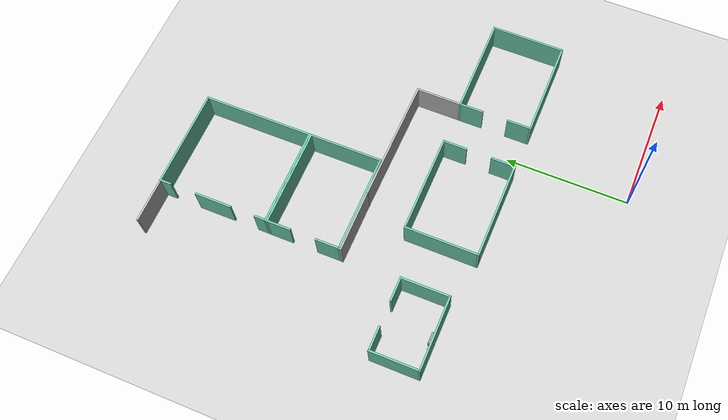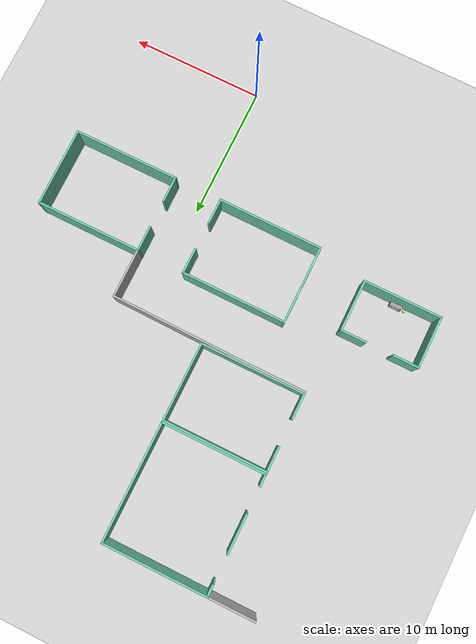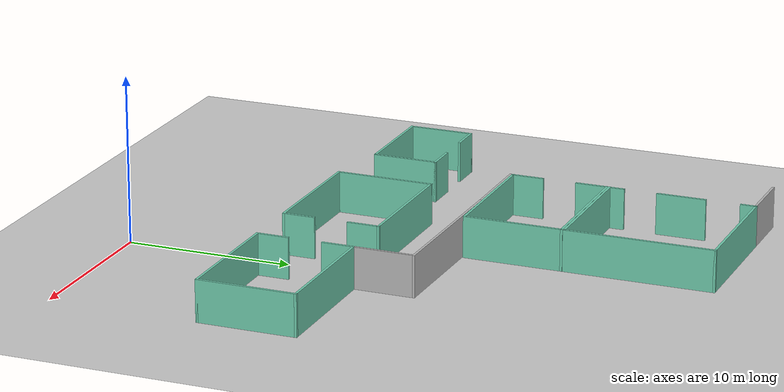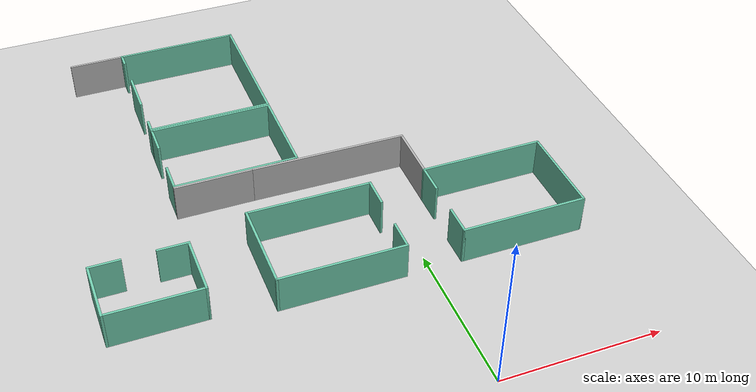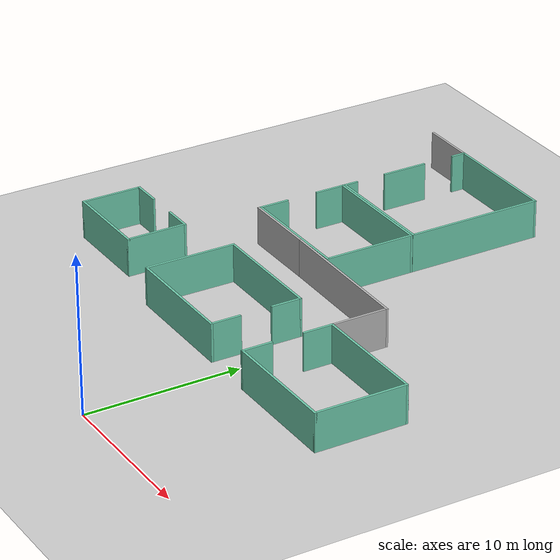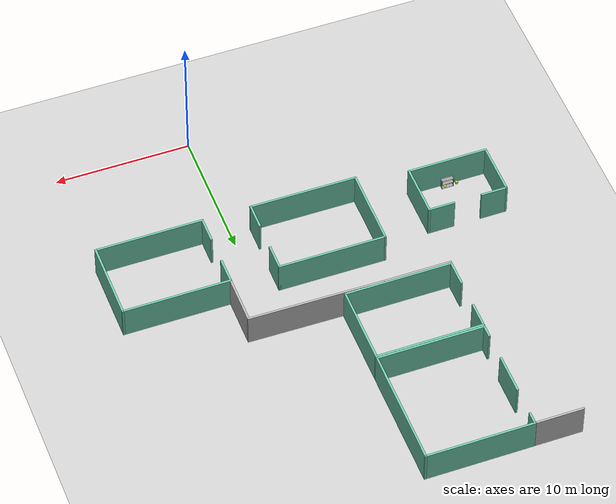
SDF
<sdf version="1.7">
 <world name="hospital_world">
  <model name="ground_plane">
   <static>1</static>
   <link name="link">
    <collision name="collision">
     <geometry><plane><normal>0 0 1</normal><size>100 100</size></plane></geometry>
     <surface>
      <contact><collide_bitmask>65535</collide_bitmask></contact>
      <friction><ode><mu>100</mu><mu2>50</mu2></ode></friction>
     </surface>
    </collision>
    <visual name="visual">
     <cast_shadows>0</cast_shadows>
     <geometry><plane><normal>0 0 1</normal><size>100 100</size></plane></geometry>
     <material>
      <script><uri>file://media/materials/scripts/gazebo.material</uri><name>Gazebo/Grey</name></script>
     </material>
    </visual>
   </link>
  </model>
  <model name="model.sdf_1">
   <pose>5.99492 11.9339 0 0 -0 0</pose>
   <link name="Wall_0">
    <collision name="Wall_0_Collision">
     <geometry><box><size>8 0.15 2.5</size></box></geometry>
     <pose>0 0 1.25 0 -0 0</pose>
    </collision>
    <visual name="Wall_0_Visual">
     <pose>0 0 1.25 0 -0 0</pose>
     <geometry><box><size>8 0.15 2.5</size></box></geometry>
     <material>
      <script><uri>file://media/materials/scripts/gazebo.material</uri><name>Gazebo/Grey</name></script>
      <ambient>0.435294 0.796078 0.67451 1</ambient>
     </material>
     <meta><layer>0</layer></meta>
    </visual>
    <pose>-0 -2.925 0 0 -0 0</pose>
   </link>
   <link name="Wall_2">
    <collision name="Wall_2_Collision">
     <geometry><box><size>6 0.15 2.5</size></box></geometry>
     <pose>0 0 1.25 0 -0 0</pose>
    </collision>
    <visual name="Wall_2_Visual">
     <pose>0 0 1.25 0 -0 0</pose>
     <geometry><box><size>6 0.15 2.5</size></box></geometry>
     <material>
      <script><uri>file://media/materials/scripts/gazebo.material</uri><name>Gazebo/Grey</name></script>
      <ambient>0.435294 0.796078 0.67451 1</ambient>
     </material>
     <meta><layer>0</layer></meta>
    </visual>
    <pose>3.925 0 0 0 -0 1.5708</pose>
   </link>
   <link name="Wall_5">
    <collision name="Wall_5_Collision">
     <geometry><box><size>8 0.15 2.5</size></box></geometry>
     <pose>0 0 1.25 0 -0 0</pose>
    </collision>
    <visual name="Wall_5_Visual">
     <pose>0 0 1.25 0 -0 0</pose>
     <geometry><box><size>8 0.15 2.5</size></box></geometry>
     <material>
      <script><uri>file://media/materials/scripts/gazebo.material</uri><name>Gazebo/Grey</name></script>
      <ambient>0.435294 0.796078 0.67451 1</ambient>
     </material>
     <meta><layer>0</layer></meta>
    </visual>
    <pose>-0 2.925 0 0 -0 3.14159</pose>
   </link>
   <link name="Wall_6">
    <collision name="Wall_6_Collision">
     <geometry><box><size>2 0.15 2.5</size></box></geometry>
     <pose>0 0 1.25 0 -0 0</pose>
    </collision>
    <visual name="Wall_6_Visual">
     <pose>0 0 1.25 0 -0 0</pose>
     <geometry><box><size>2 0.15 2.5</size></box></geometry>
     <material>
      <script><uri>file://media/materials/scripts/gazebo.material</uri><name>Gazebo/Grey</name></script>
      <ambient>0.435294 0.796078 0.67451 1</ambient>
     </material>
     <meta><layer>0</layer></meta>
    </visual>
    <pose>-3.925 2 0 0 -0 -1.5708</pose>
   </link>
   <link name="Wall_8">
    <collision name="Wall_8_Collision">
     <geometry><box><size>2 0.15 2.5</size></box></geometry>
     <pose>0 0 1.25 0 -0 0</pose>
    </collision>
    <visual name="Wall_8_Visual">
     <pose>0 0 1.25 0 -0 0</pose>
     <geometry><box><size>2 0.15 2.5</size></box></geometry>
     <material>
      <script><uri>file://media/materials/scripts/gazebo.material</uri><name>Gazebo/Grey</name></script>
      <ambient>0.435294 0.796078 0.67451 1</ambient>
     </material>
     <meta><layer>0</layer></meta>
    </visual>
    <pose>-3.925 -2 0 0 -0 1.5708</pose>
   </link>
   <static>1</static>
  </model>
  <model name="model.sdf_2_clone_clone">
   <pose>-5.44042 11.9649 0 0 -0 3.13762</pose>
   <link name="Wall_0">
    <collision name="Wall_0_Collision">
     <geometry><box><size>8 0.15 2.5</size></box></geometry>
     <pose>0 0 1.25 0 -0 0</pose>
    </collision>
    <visual name="Wall_0_Visual">
     <pose>0 0 1.25 0 -0 0</pose>
     <geometry><box><size>8 0.15 2.5</size></box></geometry>
     <material>
      <script><uri>file://media/materials/scripts/gazebo.material</uri><name>Gazebo/Grey</name></script>
      <ambient>0.435294 0.796078 0.67451 1</ambient>
     </material>
     <meta><layer>0</layer></meta>
    </visual>
    <pose>-0 -2.925 0 0 -0 0</pose>
   </link>
   <link name="Wall_2">
    <collision name="Wall_2_Collision">
     <geometry><box><size>6 0.15 2.5</size></box></geometry>
     <pose>0 0 1.25 0 -0 0</pose>
    </collision>
    <visual name="Wall_2_Visual">
     <pose>0 0 1.25 0 -0 0</pose>
     <geometry><box><size>6 0.15 2.5</size></box></geometry>
     <material>
      <script><uri>file://media/materials/scripts/gazebo.material</uri><name>Gazebo/Grey</name></script>
      <ambient>0.435294 0.796078 0.67451 1</ambient>
     </material>
     <meta><layer>0</layer></meta>
    </visual>
    <pose>3.925 0 0 0 -0 1.5708</pose>
   </link>
   <link name="Wall_5">
    <collision name="Wall_5_Collision">
     <geometry><box><size>8 0.15 2.5</size></box></geometry>
     <pose>0 0 1.25 0 -0 0</pose>
    </collision>
    <visual name="Wall_5_Visual">
     <pose>0 0 1.25 0 -0 0</pose>
     <geometry><box><size>8 0.15 2.5</size></box></geometry>
     <material>
      <script><uri>file://media/materials/scripts/gazebo.material</uri><name>Gazebo/Grey</name></script>
      <ambient>0.435294 0.796078 0.67451 1</ambient>
     </material>
     <meta><layer>0</layer></meta>
    </visual>
    <pose>-0 2.925 0 0 -0 3.14159</pose>
   </link>
   <link name="Wall_6">
    <collision name="Wall_6_Collision">
     <geometry><box><size>2 0.15 2.5</size></box></geometry>
     <pose>0 0 1.25 0 -0 0</pose>
    </collision>
    <visual name="Wall_6_Visual">
     <pose>0 0 1.25 0 -0 0</pose>
     <geometry><box><size>2 0.15 2.5</size></box></geometry>
     <material>
      <script><uri>file://media/materials/scripts/gazebo.material</uri><name>Gazebo/Grey</name></script>
      <ambient>0.435294 0.796078 0.67451 1</ambient>
     </material>
     <meta><layer>0</layer></meta>
    </visual>
    <pose>-3.925 2 0 0 -0 -1.5708</pose>
   </link>
   <link name="Wall_8">
    <collision name="Wall_8_Collision">
     <geometry><box><size>2 0.15 2.5</size></box></geometry>
     <pose>0 0 1.25 0 -0 0</pose>
    </collision>
    <visual name="Wall_8_Visual">
     <pose>0 0 1.25 0 -0 0</pose>
     <geometry><box><size>2 0.15 2.5</size></box></geometry>
     <material>
      <script><uri>file://media/materials/scripts/gazebo.material</uri><name>Gazebo/Grey</name></script>
      <ambient>0.435294 0.796078 0.67451 1</ambient>
     </material>
     <meta><layer>0</layer></meta>
    </visual>
    <pose>-3.925 -2 0 0 -0 1.5708</pose>
   </link>
   <static>1</static>
  </model>
  <model name="wall_3_5_clone">
   <static>1</static>
   <link name="link">
    <pose>0 0 1.25 0 -0 0</pose>
    <collision name="collision">
     <geometry><box><size>3.5 0.15 2.5</size></box></geometry>
     <surface>
      <contact>
       <collide_without_contact>1</collide_without_contact>
       <collide_without_contact_bitmask>2</collide_without_contact_bitmask>
      </contact>
     </surface>
    </collision>
    <visual name="visual">
     <cast_shadows>0</cast_shadows>
     <geometry><box><size>3.5 0.15 2.5</size></box></geometry>
     <material>
      <script>
       <uri>model://cutout_wall/materials/scripts</uri>
       <uri>model://cutout_wall/materials/textures</uri>
       <name>drc_practice/cutout_wall</name>
      </script>
     </material>
    </visual>
    <sensor name="mud_contact" type="contact">
     <always_on>1</always_on>
     <update_rate>1000</update_rate>
     <contact><collision>collision</collision><topic>__default_topic__</topic></contact>
    </sensor>
   </link>
   <plugin name="gazebo_mud" filename="libMudPlugin.so">
    <contact_sensor_name>link/mud_contact</contact_sensor_name>
    <stiffness>0.0</stiffness>
    <damping>40.0</damping>
    <contact_surface_bitmask>2</contact_surface_bitmask>
    <link_name>drill::link</link_name>
   </plugin>
   <pose>2.08091 16.6634 -0 0 -0 1.56806</pose>
  </model>
  <model name="wall_10_clone">
   <static>1</static>
   <link name="link">
    <pose>0 0 1.25 0 -0 0</pose>
    <collision name="collision">
     <geometry><box><size>10 0.15 2.5</size></box></geometry>
     <surface>
      <contact>
       <collide_without_contact>1</collide_without_contact>
       <collide_without_contact_bitmask>2</collide_without_contact_bitmask>
      </contact>
     </surface>
    </collision>
    <visual name="visual">
     <cast_shadows>0</cast_shadows>
     <geometry><box><size>10 0.15 2.5</size></box></geometry>
     <material>
      <script>
       <uri>model://cutout_wall/materials/scripts</uri>
       <uri>model://cutout_wall/materials/textures</uri>
       <name>drc_practice/cutout_wall</name>
      </script>
     </material>
    </visual>
    <sensor name="mud_contact" type="contact">
     <always_on>1</always_on>
     <update_rate>1000</update_rate>
     <contact><collision>collision</collision><topic>__default_topic__</topic></contact>
    </sensor>
   </link>
   <plugin name="gazebo_mud" filename="libMudPlugin.so">
    <contact_sensor_name>link/mud_contact</contact_sensor_name>
    <stiffness>0.0</stiffness>
    <damping>40.0</damping>
    <contact_surface_bitmask>2</contact_surface_bitmask>
    <link_name>drill::link</link_name>
   </plugin>
   <pose>-2.83918 18.5508 -0 0 0 -0.014119</pose>
  </model>
  <model name="wall_5_clone">
   <static>1</static>
   <link name="link">
    <pose>0 0 1.25 0 -0 0</pose>
    <collision name="collision">
     <geometry><box><size>5 0.15 2.5</size></box></geometry>
     <surface>
      <contact>
       <collide_without_contact>1</collide_without_contact>
       <collide_without_contact_bitmask>2</collide_without_contact_bitmask>
      </contact>
     </surface>
    </collision>
    <visual name="visual">
     <cast_shadows>0</cast_shadows>
     <geometry><box><size>5 0.15 2.5</size></box></geometry>
     <material>
      <script>
       <uri>model://cutout_wall/materials/scripts</uri>
       <uri>model://cutout_wall/materials/textures</uri>
       <name>drc_practice/cutout_wall</name>
      </script>
     </material>
    </visual>
    <sensor name="mud_contact" type="contact">
     <always_on>1</always_on>
     <update_rate>1000</update_rate>
     <contact><collision>collision</collision><topic>__default_topic__</topic></contact>
    </sensor>
   </link>
   <plugin name="gazebo_mud" filename="libMudPlugin.so">
    <contact_sensor_name>link/mud_contact</contact_sensor_name>
    <stiffness>0.0</stiffness>
    <damping>40.0</damping>
    <contact_surface_bitmask>2</contact_surface_bitmask>
    <link_name>drill::link</link_name>
   </plugin>
   <pose>-10.3264 18.6222 0 0 -0 0</pose>
  </model>
  <model name="hospital_stroage_room">
   <pose>-16.0834 11.7449 0 0 -0 0</pose>
   <link name="Wall_0">
    <collision name="Wall_0_Collision">
     <geometry><box><size>6 0.15 2.5</size></box></geometry>
     <pose>0 0 1.25 0 -0 0</pose>
    </collision>
    <visual name="Wall_0_Visual">
     <pose>0 0 1.25 0 -0 0</pose>
     <geometry><box><size>6 0.15 2.5</size></box></geometry>
     <material>
      <script><uri>file://media/materials/scripts/gazebo.material</uri><name>Gazebo/Grey</name></script>
      <ambient>0.435294 0.796078 0.67451 1</ambient>
     </material>
     <meta><layer>0</layer></meta>
    </visual>
    <pose>-0 -1.925 0 0 -0 0</pose>
   </link>
   <link name="Wall_1">
    <collision name="Wall_1_Collision">
     <geometry><box><size>4 0.15 2.5</size></box></geometry>
     <pose>0 0 1.25 0 -0 0</pose>
    </collision>
    <visual name="Wall_1_Visual">
     <pose>0 0 1.25 0 -0 0</pose>
     <geometry><box><size>4 0.15 2.5</size></box></geometry>
     <material>
      <script><uri>file://media/materials/scripts/gazebo.material</uri><name>Gazebo/Grey</name></script>
      <ambient>0.435294 0.796078 0.67451 1</ambient>
     </material>
     <meta><layer>0</layer></meta>
    </visual>
    <pose>2.925 0 0 0 -0 1.5708</pose>
   </link>
   <link name="Wall_3">
    <collision name="Wall_3_Collision">
     <geometry><box><size>4 0.15 2.5</size></box></geometry>
     <pose>0 0 1.25 0 -0 0</pose>
    </collision>
    <visual name="Wall_3_Visual">
     <pose>0 0 1.25 0 -0 0</pose>
     <geometry><box><size>4 0.15 2.5</size></box></geometry>
     <material>
      <script><uri>file://media/materials/scripts/gazebo.material</uri><name>Gazebo/Grey</name></script>
      <ambient>0.435294 0.796078 0.67451 1</ambient>
     </material>
     <meta><layer>0</layer></meta>
    </visual>
    <pose>-2.925 0 0 0 -0 1.5708</pose>
   </link>
   <link name="Wall_4">
    <collision name="Wall_4_Collision">
     <geometry><box><size>2 0.15 2.5</size></box></geometry>
     <pose>0 0 1.25 0 -0 0</pose>
    </collision>
    <visual name="Wall_4_Visual">
     <pose>0 0 1.25 0 -0 0</pose>
     <geometry><box><size>2 0.15 2.5</size></box></geometry>
     <material>
      <script><uri>file://media/materials/scripts/gazebo.material</uri><name>Gazebo/Grey</name></script>
      <ambient>0.435294 0.796078 0.67451 1</ambient>
     </material>
     <meta><layer>0</layer></meta>
    </visual>
    <pose>-2 1.925 0 0 -0 0</pose>
   </link>
   <link name="Wall_6">
    <collision name="Wall_6_Collision">
     <geometry><box><size>2 0.15 2.5</size></box></geometry>
     <pose>0 0 1.25 0 -0 0</pose>
    </collision>
    <visual name="Wall_6_Visual">
     <pose>0 0 1.25 0 -0 0</pose>
     <geometry><box><size>2 0.15 2.5</size></box></geometry>
     <material>
      <script><uri>file://media/materials/scripts/gazebo.material</uri><name>Gazebo/Grey</name></script>
      <ambient>0.435294 0.796078 0.67451 1</ambient>
     </material>
     <meta><layer>0</layer></meta>
    </visual>
    <pose>2 1.925 0 0 -0 3.14159</pose>
   </link>
   <static>1</static>
  </model>
  <model name="model.sdf_clone">
   <pose>-8.82013 21.689 0 0 -0 0</pose>
   <link name="Wall_0">
    <collision name="Wall_0_Collision">
     <geometry><box><size>8 0.15 2.5</size></box></geometry>
     <pose>0 0 1.25 0 -0 0</pose>
    </collision>
    <visual name="Wall_0_Visual">
     <pose>0 0 1.25 0 -0 0</pose>
     <geometry><box><size>8 0.15 2.5</size></box></geometry>
     <material>
      <script><uri>file://media/materials/scripts/gazebo.material</uri><name>Gazebo/Grey</name></script>
      <ambient>0.435294 0.796078 0.67451 1</ambient>
     </material>
     <meta><layer>0</layer></meta>
    </visual>
    <pose>-0 -2.925 0 0 -0 0</pose>
   </link>
   <link name="Wall_2">
    <collision name="Wall_2_Collision">
     <geometry><box><size>6 0.15 2.5</size></box></geometry>
     <pose>0 0 1.25 0 -0 0</pose>
    </collision>
    <visual name="Wall_2_Visual">
     <pose>0 0 1.25 0 -0 0</pose>
     <geometry><box><size>6 0.15 2.5</size></box></geometry>
     <material>
      <script><uri>file://media/materials/scripts/gazebo.material</uri><name>Gazebo/Grey</name></script>
      <ambient>0.435294 0.796078 0.67451 1</ambient>
     </material>
     <meta><layer>0</layer></meta>
    </visual>
    <pose>3.925 0 0 0 -0 1.5708</pose>
   </link>
   <link name="Wall_5">
    <collision name="Wall_5_Collision">
     <geometry><box><size>8 0.15 2.5</size></box></geometry>
     <pose>0 0 1.25 0 -0 0</pose>
    </collision>
    <visual name="Wall_5_Visual">
     <pose>0 0 1.25 0 -0 0</pose>
     <geometry><box><size>8 0.15 2.5</size></box></geometry>
     <material>
      <script><uri>file://media/materials/scripts/gazebo.material</uri><name>Gazebo/Grey</name></script>
      <ambient>0.435294 0.796078 0.67451 1</ambient>
     </material>
     <meta><layer>0</layer></meta>
    </visual>
    <pose>-0 2.925 0 0 -0 3.14159</pose>
   </link>
   <link name="Wall_6">
    <collision name="Wall_6_Collision">
     <geometry><box><size>2 0.15 2.5</size></box></geometry>
     <pose>0 0 1.25 0 -0 0</pose>
    </collision>
    <visual name="Wall_6_Visual">
     <pose>0 0 1.25 0 -0 0</pose>
     <geometry><box><size>2 0.15 2.5</size></box></geometry>
     <material>
      <script><uri>file://media/materials/scripts/gazebo.material</uri><name>Gazebo/Grey</name></script>
      <ambient>0.435294 0.796078 0.67451 1</ambient>
     </material>
     <meta><layer>0</layer></meta>
    </visual>
    <pose>-3.925 2 0 0 -0 -1.5708</pose>
   </link>
   <link name="Wall_8">
    <collision name="Wall_8_Collision">
     <geometry><box><size>2 0.15 2.5</size></box></geometry>
     <pose>0 0 1.25 0 -0 0</pose>
    </collision>
    <visual name="Wall_8_Visual">
     <pose>0 0 1.25 0 -0 0</pose>
     <geometry><box><size>2 0.15 2.5</size></box></geometry>
     <material>
      <script><uri>file://media/materials/scripts/gazebo.material</uri><name>Gazebo/Grey</name></script>
      <ambient>0.435294 0.796078 0.67451 1</ambient>
     </material>
     <meta><layer>0</layer></meta>
    </visual>
    <pose>-3.925 -2 0 0 -0 1.5708</pose>
   </link>
   <static>1</static>
  </model>
  <model name="model.sdf_3">
   <pose>-8.81711 29.1965 0 0 -0 0</pose>
   <link name="Wall_0">
    <collision name="Wall_0_Collision">
     <geometry><box><size>8 0.15 2.5</size></box></geometry>
     <pose>0 0 1.25 0 -0 0</pose>
    </collision>
    <visual name="Wall_0_Visual">
     <pose>0 0 1.25 0 -0 0</pose>
     <geometry><box><size>8 0.15 2.5</size></box></geometry>
     <material>
      <script><uri>file://media/materials/scripts/gazebo.material</uri><name>Gazebo/Grey</name></script>
      <ambient>0.435294 0.796078 0.67451 1</ambient>
     </material>
     <meta><layer>0</layer></meta>
    </visual>
    <pose>0.00165 -4.425 0 0 -0 0</pose>
   </link>
   <link name="Wall_1">
    <collision name="Wall_1_Collision">
     <geometry><box><size>9 0.15 2.5</size></box></geometry>
     <pose>0 0 1.25 0 -0 0</pose>
    </collision>
    <visual name="Wall_1_Visual">
     <pose>0 0 1.25 0 -0 0</pose>
     <geometry><box><size>9 0.15 2.5</size></box></geometry>
     <material>
      <script><uri>file://media/materials/scripts/gazebo.material</uri><name>Gazebo/Grey</name></script>
      <ambient>0.435294 0.796078 0.67451 1</ambient>
     </material>
     <meta><layer>0</layer></meta>
    </visual>
    <pose>3.92665 0 0 0 -0 1.5708</pose>
   </link>
   <link name="Wall_3">
    <collision name="Wall_3_Collision">
     <geometry><box><size>8 0.15 2.5</size></box></geometry>
     <pose>0 0 1.25 0 -0 0</pose>
    </collision>
    <visual name="Wall_3_Visual">
     <pose>0 0 1.25 0 -0 0</pose>
     <geometry><box><size>8 0.15 2.5</size></box></geometry>
     <material>
      <script><uri>file://media/materials/scripts/gazebo.material</uri><name>Gazebo/Grey</name></script>
      <ambient>0.435294 0.796078 0.67451 1</ambient>
     </material>
     <meta><layer>0</layer></meta>
    </visual>
    <pose>0.00165 4.425 0 0 -0 3.14159</pose>
   </link>
   <link name="Wall_4">
    <collision name="Wall_4_Collision">
     <geometry><box><size>1 0.15 2.5</size></box></geometry>
     <pose>0 0 1.25 0 -0 0</pose>
    </collision>
    <visual name="Wall_4_Visual">
     <pose>0 0 1.25 0 -0 0</pose>
     <geometry><box><size>1 0.15 2.5</size></box></geometry>
     <material>
      <script><uri>file://media/materials/scripts/gazebo.material</uri><name>Gazebo/Grey</name></script>
      <ambient>0.435294 0.796078 0.67451 1</ambient>
     </material>
     <meta><layer>0</layer></meta>
    </visual>
    <pose>-3.92335 4 0 0 -0 -1.5708</pose>
   </link>
   <link name="Wall_6">
    <collision name="Wall_6_Collision">
     <geometry><box><size>1 0.15 2.5</size></box></geometry>
     <pose>0 0 1.25 0 -0 0</pose>
    </collision>
    <visual name="Wall_6_Visual">
     <pose>0 0 1.25 0 -0 0</pose>
     <geometry><box><size>1 0.15 2.5</size></box></geometry>
     <material>
      <script><uri>file://media/materials/scripts/gazebo.material</uri><name>Gazebo/Grey</name></script>
      <ambient>0.435294 0.796078 0.67451 1</ambient>
     </material>
     <meta><layer>0</layer></meta>
    </visual>
    <pose>-3.92335 -4 0 0 -0 1.5708</pose>
   </link>
   <link name="Wall_9">
    <collision name="Wall_9_Collision">
     <geometry><box><size>3 0.15 2.5</size></box></geometry>
     <pose>0 0 1.25 0 -0 0</pose>
    </collision>
    <visual name="Wall_9_Visual">
     <pose>0 0 1.25 0 -0 0</pose>
     <geometry><box><size>3 0.15 2.5</size></box></geometry>
     <material>
      <script><uri>file://media/materials/scripts/gazebo.material</uri><name>Gazebo/Grey</name></script>
      <ambient>0.435294 0.796078 0.67451 1</ambient>
     </material>
     <meta><layer>0</layer></meta>
    </visual>
    <pose>-3.92665 -0.04515 0 0 -0 1.5708</pose>
   </link>
   <static>1</static>
  </model>
  <model name="wall_3_5_0">
   <static>1</static>
   <link name="link">
    <pose>0 0 1.25 0 -0 0</pose>
    <collision name="collision">
     <geometry><box><size>3.5 0.15 2.5</size></box></geometry>
     <surface>
      <contact>
       <collide_without_contact>1</collide_without_contact>
       <collide_without_contact_bitmask>2</collide_without_contact_bitmask>
      </contact>
     </surface>
    </collision>
    <visual name="visual">
     <cast_shadows>0</cast_shadows>
     <geometry><box><size>3.5 0.15 2.5</size></box></geometry>
     <material>
      <script>
       <uri>model://cutout_wall/materials/scripts</uri>
       <uri>model://cutout_wall/materials/textures</uri>
       <name>drc_practice/cutout_wall</name>
      </script>
     </material>
    </visual>
    <sensor name="mud_contact" type="contact">
     <always_on>1</always_on>
     <update_rate>1000</update_rate>
     <contact><collision>collision</collision><topic>__default_topic__</topic></contact>
    </sensor>
   </link>
   <plugin name="gazebo_mud" filename="libMudPlugin.so">
    <contact_sensor_name>link/mud_contact</contact_sensor_name>
    <stiffness>0.0</stiffness>
    <damping>40.0</damping>
    <contact_surface_bitmask>2</contact_surface_bitmask>
    <link_name>drill::link</link_name>
   </plugin>
   <pose>-14.5756 33.6168 0 0 -0 0</pose>
  </model>
  <model name="Wall_Cabinet_36x15W_clone_clone">
   <link name="Wall_0">
    <pose>0 0 0.01 0 -0 0</pose>
    <inertial>
     <mass>1.9796</mass>
     <inertia><ixx>0.0145</ixx><iyy>0.1511</iyy><izz>0.1367</izz><ixy>0</ixy><ixz>0</ixz><iyz>0</iyz></inertia>
    </inertial>
    <collision name="Wall_0_Collision"><geometry><box><size>0.91 0.296 0.02</size></box></geometry></collision>
    <visual name="Wall_0_Visual">
     <geometry><box><size>0.91 0.296 0.02</size></box></geometry>
     <material>
      <script><uri>file://media/materials/scripts/gazebo.material</uri><name>Gazebo/Grey</name></script>
      <ambient>1 1 1 1</ambient>
     </material>
    </visual>
   </link>
   <joint name="0_2" type="fixed">
    <pose>-0.455 0 0 0 -0 0</pose>
    <parent>Wall_2</parent>
    <child>Wall_0</child>
    <axis><xyz>0 0 1</xyz><limit><lower>-1e+16</lower><upper>1e+16</upper></limit></axis>
   </joint>
   <joint name="0_4" type="fixed">
    <pose>0.455 0 0 0 -0 0</pose>
    <parent>Wall_4</parent>
    <child>Wall_0</child>
    <axis><xyz>0 0 1</xyz><limit><lower>-1e+16</lower><upper>1e+16</upper></limit></axis>
   </joint>
   <joint name="0_8" type="fixed">
    <pose>0 -0.148 0 0 -0 0</pose>
    <parent>Wall_8</parent>
    <child>Wall_0</child>
    <axis><xyz>0 0 1</xyz><limit><lower>-1e+16</lower><upper>1e+16</upper></limit></axis>
   </joint>
   <link name="Wall_2">
    <pose>-0.445 0 0.192 0 -0 0</pose>
    <inertial>
     <mass>0.8353</mass>
     <inertia><ixx>0.0061</ixx><iyy>0.0164</iyy><izz>0.0103</izz><ixy>0</ixy><ixz>0</ixz><iyz>0</iyz></inertia>
    </inertial>
    <collision name="Wall_2_Collision"><geometry><box><size>0.02 0.296 0.384</size></box></geometry></collision>
    <visual name="Wall_2_Visual">
     <geometry><box><size>0.02 0.296 0.384</size></box></geometry>
     <material>
      <script><uri>file://media/materials/scripts/gazebo.material</uri><name>Gazebo/Grey</name></script>
      <ambient>1 1 1 1</ambient>
     </material>
    </visual>
   </link>
   <link name="Wall_4">
    <pose>0.445 0 0.192 0 -0 0</pose>
    <inertial>
     <mass>0.8353</mass>
     <inertia><ixx>0.0061</ixx><iyy>0.0164</iyy><izz>0.0103</izz><ixy>0</ixy><ixz>0</ixz><iyz>0</iyz></inertia>
    </inertial>
    <collision name="Wall_4_Collision"><geometry><box><size>0.02 0.296 0.384</size></box></geometry></collision>
    <visual name="Wall_4_Visual">
     <geometry><box><size>0.02 0.296 0.384</size></box></geometry>
     <material>
      <script><uri>file://media/materials/scripts/gazebo.material</uri><name>Gazebo/Grey</name></script>
      <ambient>1 1 1 1</ambient>
     </material>
    </visual>
   </link>
   <link name="Wall_6">
    <pose>0 0 0.374 0 -0 0</pose>
    <inertial>
     <mass>1.9796</mass>
     <inertia><ixx>0.0145</ixx><iyy>0.1511</iyy><izz>0.1367</izz><ixy>0</ixy><ixz>0</ixz><iyz>0</iyz></inertia>
    </inertial>
    <collision name="Wall_6_Collision"><geometry><box><size>0.91 0.296 0.02</size></box></geometry></collision>
    <visual name="Wall_6_Visual">
     <geometry><box><size>0.91 0.296 0.02</size></box></geometry>
     <material>
      <script><uri>file://media/materials/scripts/gazebo.material</uri><name>Gazebo/Grey</name></script>
      <ambient>1 1 1 1</ambient>
     </material>
    </visual>
   </link>
   <joint name="6_2" type="fixed">
    <pose>-0.455 0 0 0 -0 0</pose>
    <parent>Wall_2</parent>
    <child>Wall_6</child>
    <axis><xyz>0 0 1</xyz><limit><lower>-1e+16</lower><upper>1e+16</upper></limit></axis>
   </joint>
   <joint name="6_4" type="fixed">
    <pose>0.455 0 0 0 -0 0</pose>
    <parent>Wall_4</parent>
    <child>Wall_6</child>
    <axis><xyz>0 0 1</xyz><limit><lower>-1e+16</lower><upper>1e+16</upper></limit></axis>
   </joint>
   <joint name="6_8" type="fixed">
    <pose>0 -0.148 0 0 -0 0</pose>
    <parent>Wall_8</parent>
    <child>Wall_6</child>
    <axis><xyz>0 0 1</xyz><limit><lower>-1e+16</lower><upper>1e+16</upper></limit></axis>
   </joint>
   <link name="Wall_8">
    <pose>0 -0.138 0.19 0 -0 0</pose>
    <inertial>
     <mass>2.5302</mass>
     <inertia><ixx>0.0305</ixx><iyy>0.1732</iyy><izz>0.2035</izz><ixy>0</ixy><ixz>0</ixz><iyz>0</iyz></inertia>
    </inertial>
    <collision name="Wall_8_Collision"><geometry><box><size>0.906 0.02 0.38</size></box></geometry></collision>
    <visual name="Wall_8_Visual">
     <geometry><box><size>0.906 0.02 0.38</size></box></geometry>
     <material>
      <script><uri>file://media/materials/scripts/gazebo.material</uri><name>Gazebo/Grey</name></script>
      <ambient>1 1 1 1</ambient>
     </material>
    </visual>
   </link>
   <joint name="8_2" type="fixed">
    <pose>-0.453 0 0 0 -0 0</pose>
    <parent>Wall_2</parent>
    <child>Wall_8</child>
    <axis><xyz>0 1 0</xyz><limit><lower>-1e+16</lower><upper>1e+16</upper></limit></axis>
   </joint>
   <joint name="8_4" type="fixed">
    <pose>0.453 0 0 0 -0 0</pose>
    <parent>Wall_4</parent>
    <child>Wall_8</child>
    <axis><xyz>0 1 0</xyz><limit><lower>-1e+16</lower><upper>1e+16</upper></limit></axis>
   </joint>
   <static>1</static>
   <pose>-16.0423 10.0674 0 0 -0 0</pose>
  </model>
  <model name="Wall_Cabinet_36x15W_clone_0_clone_clone">
   <link name="Wall_0">
    <pose>0 0 0.01 0 -0 0</pose>
    <inertial>
     <mass>1.9796</mass>
     <inertia><ixx>0.0145</ixx><iyy>0.1511</iyy><izz>0.1367</izz><ixy>0</ixy><ixz>0</ixz><iyz>0</iyz></inertia>
    </inertial>
    <collision name="Wall_0_Collision"><geometry><box><size>0.91 0.296 0.02</size></box></geometry></collision>
    <visual name="Wall_0_Visual">
     <geometry><box><size>0.91 0.296 0.02</size></box></geometry>
     <material>
      <script><uri>file://media/materials/scripts/gazebo.material</uri><name>Gazebo/Grey</name></script>
      <ambient>1 1 1 1</ambient>
     </material>
    </visual>
   </link>
   <joint name="0_2" type="fixed">
    <pose>-0.455 0 0 0 -0 0</pose>
    <parent>Wall_2</parent>
    <child>Wall_0</child>
    <axis><xyz>0 0 1</xyz><limit><lower>-1e+16</lower><upper>1e+16</upper></limit></axis>
   </joint>
   <joint name="0_4" type="fixed">
    <pose>0.455 0 0 0 -0 0</pose>
    <parent>Wall_4</parent>
    <child>Wall_0</child>
    <axis><xyz>0 0 1</xyz><limit><lower>-1e+16</lower><upper>1e+16</upper></limit></axis>
   </joint>
   <joint name="0_8" type="fixed">
    <pose>0 -0.148 0 0 -0 0</pose>
    <parent>Wall_8</parent>
    <child>Wall_0</child>
    <axis><xyz>0 0 1</xyz><limit><lower>-1e+16</lower><upper>1e+16</upper></limit></axis>
   </joint>
   <link name="Wall_2">
    <pose>-0.445 0 0.192 0 -0 0</pose>
    <inertial>
     <mass>0.8353</mass>
     <inertia><ixx>0.0061</ixx><iyy>0.0164</iyy><izz>0.0103</izz><ixy>0</ixy><ixz>0</ixz><iyz>0</iyz></inertia>
    </inertial>
    <collision name="Wall_2_Collision"><geometry><box><size>0.02 0.296 0.384</size></box></geometry></collision>
    <visual name="Wall_2_Visual">
     <geometry><box><size>0.02 0.296 0.384</size></box></geometry>
     <material>
      <script><uri>file://media/materials/scripts/gazebo.material</uri><name>Gazebo/Grey</name></script>
      <ambient>1 1 1 1</ambient>
     </material>
    </visual>
   </link>
   <link name="Wall_4">
    <pose>0.445 0 0.192 0 -0 0</pose>
    <inertial>
     <mass>0.8353</mass>
     <inertia><ixx>0.0061</ixx><iyy>0.0164</iyy><izz>0.0103</izz><ixy>0</ixy><ixz>0</ixz><iyz>0</iyz></inertia>
    </inertial>
    <collision name="Wall_4_Collision"><geometry><box><size>0.02 0.296 0.384</size></box></geometry></collision>
    <visual name="Wall_4_Visual">
     <geometry><box><size>0.02 0.296 0.384</size></box></geometry>
     <material>
      <script><uri>file://media/materials/scripts/gazebo.material</uri><name>Gazebo/Grey</name></script>
      <ambient>1 1 1 1</ambient>
     </material>
    </visual>
   </link>
   <link name="Wall_6">
    <pose>0 0 0.374 0 -0 0</pose>
    <inertial>
     <mass>1.9796</mass>
     <inertia><ixx>0.0145</ixx><iyy>0.1511</iyy><izz>0.1367</izz><ixy>0</ixy><ixz>0</ixz><iyz>0</iyz></inertia>
    </inertial>
    <collision name="Wall_6_Collision"><geometry><box><size>0.91 0.296 0.02</size></box></geometry></collision>
    <visual name="Wall_6_Visual">
     <geometry><box><size>0.91 0.296 0.02</size></box></geometry>
     <material>
      <script><uri>file://media/materials/scripts/gazebo.material</uri><name>Gazebo/Grey</name></script>
      <ambient>1 1 1 1</ambient>
     </material>
    </visual>
   </link>
   <joint name="6_2" type="fixed">
    <pose>-0.455 0 0 0 -0 0</pose>
    <parent>Wall_2</parent>
    <child>Wall_6</child>
    <axis><xyz>0 0 1</xyz><limit><lower>-1e+16</lower><upper>1e+16</upper></limit></axis>
   </joint>
   <joint name="6_4" type="fixed">
    <pose>0.455 0 0 0 -0 0</pose>
    <parent>Wall_4</parent>
    <child>Wall_6</child>
    <axis><xyz>0 0 1</xyz><limit><lower>-1e+16</lower><upper>1e+16</upper></limit></axis>
   </joint>
   <joint name="6_8" type="fixed">
    <pose>0 -0.148 0 0 -0 0</pose>
    <parent>Wall_8</parent>
    <child>Wall_6</child>
    <axis><xyz>0 0 1</xyz><limit><lower>-1e+16</lower><upper>1e+16</upper></limit></axis>
   </joint>
   <link name="Wall_8">
    <pose>0 -0.138 0.19 0 -0 0</pose>
    <inertial>
     <mass>2.5302</mass>
     <inertia><ixx>0.0305</ixx><iyy>0.1732</iyy><izz>0.2035</izz><ixy>0</ixy><ixz>0</ixz><iyz>0</iyz></inertia>
    </inertial>
    <collision name="Wall_8_Collision"><geometry><box><size>0.906 0.02 0.38</size></box></geometry></collision>
    <visual name="Wall_8_Visual">
     <geometry><box><size>0.906 0.02 0.38</size></box></geometry>
     <material>
      <script><uri>file://media/materials/scripts/gazebo.material</uri><name>Gazebo/Grey</name></script>
      <ambient>1 1 1 1</ambient>
     </material>
    </visual>
   </link>
   <joint name="8_2" type="fixed">
    <pose>-0.453 0 0 0 -0 0</pose>
    <parent>Wall_2</parent>
    <child>Wall_8</child>
    <axis><xyz>0 1 0</xyz><limit><lower>-1e+16</lower><upper>1e+16</upper></limit></axis>
   </joint>
   <joint name="8_4" type="fixed">
    <pose>0.453 0 0 0 -0 0</pose>
    <parent>Wall_4</parent>
    <child>Wall_8</child>
    <axis><xyz>0 1 0</xyz><limit><lower>-1e+16</lower><upper>1e+16</upper></limit></axis>
   </joint>
   <static>1</static>
   <pose>-16.0423 10.0674 0.383805 0 -0 0</pose>
  </model>
  <model name="sphere_y">
   <link name="link_1">
    <pose>0 0 0.1 0 -0 0</pose>
    <inertial>
     <mass>1</mass>
     <inertia><ixx>0.1</ixx><ixy>0</ixy><ixz>0</ixz><iyy>0.1</iyy><iyz>0</iyz><izz>0.1</izz></inertia>
    </inertial>
    <visual name="visual">
     <geometry><sphere><radius>0.1</radius></sphere></geometry>
     <material>
      <lighting>1</lighting>
      <script><uri>file://media/materials/scripts/gazebo.material</uri><name>Gazebo/Grey</name></script>
      <ambient>1 1 0 1</ambient>
      <diffuse>1 1 0 1</diffuse>
      <specular>0 0 0 1</specular>
      <emissive>0 0 0 1</emissive>
      <shader type="vertex"><normal_map>__default__</normal_map></shader>
     </material>
    </visual>
    <collision name="collision">
     <geometry><sphere><radius>0.1</radius></sphere></geometry>
     <surface>
      <friction>
       <ode><mu>1</mu><mu2>1</mu2><fdir1>0 0 0</fdir1><slip1>0</slip1><slip2>0</slip2></ode>
       <torsional>
        <coefficient>1</coefficient>
        <patch_radius>0</patch_radius>
        <surface_radius>0</surface_radius>
        <use_patch_radius>1</use_patch_radius>
        <ode><slip>0</slip></ode>
       </torsional>
      </friction>
      <bounce><restitution_coefficient>0</restitution_coefficient><threshold>1e+06</threshold></bounce>
      <contact>
       <collide_without_contact>0</collide_without_contact>
       <collide_without_contact_bitmask>1</collide_without_contact_bitmask>
       <collide_bitmask>1</collide_bitmask>
       <ode>
        <soft_cfm>0</soft_cfm>
        <soft_erp>0.2</soft_erp>
        <kp>1e+13</kp>
        <kd>1</kd>
        <max_vel>0.01</max_vel>
        <min_depth>0</min_depth>
       </ode>
       <bullet>
        <split_impulse>1</split_impulse>
        <split_impulse_penetration_threshold>-0.01</split_impulse_penetration_threshold>
        <soft_cfm>0</soft_cfm>
        <soft_erp>0.2</soft_erp>
        <kp>1e+13</kp>
        <kd>1</kd>
       </bullet>
      </contact>
     </surface>
    </collision>
   </link>
   <static>1</static>
   <pose>-15.8664 10.0854 0 0 -0 0</pose>
  </model>
  <model name="cylinder_gy">
   <link name="link_0">
    <pose>0 0 0.1 0 -0 0</pose>
    <inertial>
     <mass>1</mass>
     <inertia><ixx>0.145833</ixx><ixy>0</ixy><ixz>0</ixz><iyy>0.145833</iyy><iyz>0</iyz><izz>0.125</izz></inertia>
    </inertial>
    <visual name="visual">
     <geometry><cylinder><radius>0.1</radius><length>0.2</length></cylinder></geometry>
     <material>
      <lighting>1</lighting>
      <script><uri>file://media/materials/scripts/gazebo.material</uri><name>Gazebo/Grey</name></script>
      <ambient>0.675 1 0 1</ambient>
      <diffuse>0.675 1 0 1</diffuse>
      <specular>0 0 0 1</specular>
      <emissive>0 0 0 1</emissive>
      <shader type="vertex"><normal_map>__default__</normal_map></shader>
     </material>
    </visual>
    <collision name="collision">
     <geometry><cylinder><radius>0.1</radius><length>0.2</length></cylinder></geometry>
     <surface>
      <friction>
       <ode><mu>1</mu><mu2>1</mu2><fdir1>0 0 0</fdir1><slip1>0</slip1><slip2>0</slip2></ode>
       <torsional>
        <coefficient>1</coefficient>
        <patch_radius>0</patch_radius>
        <surface_radius>0</surface_radius>
        <use_patch_radius>1</use_patch_radius>
        <ode><slip>0</slip></ode>
       </torsional>
      </friction>
      <bounce><restitution_coefficient>0</restitution_coefficient><threshold>1e+06</threshold></bounce>
      <contact>
       <collide_without_contact>0</collide_without_contact>
       <collide_without_contact_bitmask>1</collide_without_contact_bitmask>
       <collide_bitmask>1</collide_bitmask>
       <ode>
        <soft_cfm>0</soft_cfm>
        <soft_erp>0.2</soft_erp>
        <kp>1e+13</kp>
        <kd>1</kd>
        <max_vel>0.01</max_vel>
        <min_depth>0</min_depth>
       </ode>
       <bullet>
        <split_impulse>1</split_impulse>
        <split_impulse_penetration_threshold>-0.01</split_impulse_penetration_threshold>
        <soft_cfm>0</soft_cfm>
        <soft_erp>0.2</soft_erp>
        <kp>1e+13</kp>
        <kd>1</kd>
       </bullet>
      </contact>
     </surface>
    </collision>
   </link>
   <static>1</static>
   <pose>-16.7809 10.066 0 0 -0 0</pose>
  </model>
 </world>
</sdf>
